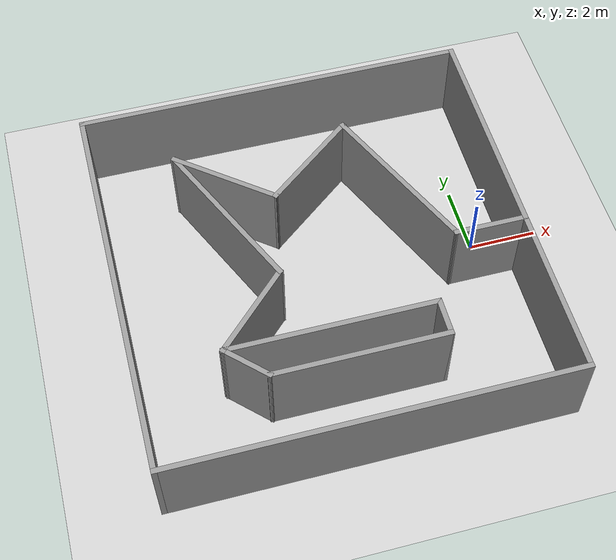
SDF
<sdf version="1.7">
 <world name="default">
  <light name="sun" type="directional">
   <pose>0 0 10 0 -0 0</pose>
   <diffuse>0.8 0.8 0.8 1</diffuse>
   <specular>0.2 0.2 0.2 1</specular>
   <attenuation>
    <range>1000</range>
    <constant>0.9</constant>
    <linear>0.01</linear>
    <quadratic>0.001</quadratic>
   </attenuation>
   <direction>-0.5 0.1 -0.9</direction>
   <spot><inner_angle>0</inner_angle><outer_angle>0</outer_angle><falloff>0</falloff></spot>
  </light>
  <model name="ground_plane">
   <static>1</static>
   <link name="link">
    <collision name="collision">
     <geometry><plane><normal>0 0 1</normal><size>100 100</size></plane></geometry>
     <surface><friction><ode><mu>100</mu><mu2>50</mu2></ode></friction></surface>
    </collision>
    <visual name="visual">
     <cast_shadows>0</cast_shadows>
     <geometry><plane><normal>0 0 1</normal><size>100 100</size></plane></geometry>
     <material>
      <script><uri>file://media/materials/scripts/gazebo.material</uri><name>Gazebo/Grey</name></script>
     </material>
    </visual>
   </link>
  </model>
  <gravity>0 0 -9.8</gravity>
  <magnetic_field>6e-06 2.3e-05 -4.2e-05</magnetic_field>
  <atmosphere type="adiabatic"/>
  <physics type="ode">
   <max_step_size>0.001</max_step_size>
   <real_time_factor>1</real_time_factor>
   <real_time_update_rate>1000</real_time_update_rate>
  </physics>
  <scene><ambient>0.4 0.4 0.4 1</ambient><background>0.7 0.7 0.7 1</background><shadows>1</shadows></scene>
  <spherical_coordinates>
   <surface_model>EARTH_WGS84</surface_model>
   <latitude_deg>0</latitude_deg>
   <longitude_deg>0</longitude_deg>
   <elevation>0</elevation>
   <heading_deg>0</heading_deg>
  </spherical_coordinates>
  <model name="pointy_corners">
   <pose>-4.675 -0.175 0 0 -0 0</pose>
   <link name="Wall_0">
    <collision name="Wall_0_Collision">
     <geometry><box><size>2.15 0.15 2.5</size></box></geometry>
     <pose>0 0 1.25 0 -0 0</pose>
    </collision>
    <visual name="Wall_0_Visual">
     <pose>0 0 1.25 0 -0 0</pose>
     <geometry><box><size>2.15 0.15 2.5</size></box></geometry>
     <material>
      <script><uri>file://media/materials/scripts/gazebo.material</uri><name>Gazebo/Grey</name></script>
      <ambient>1 1 1 1</ambient>
     </material>
     <meta><layer>0</layer></meta>
    </visual>
    <pose>4.675 -0.825 0 0 -0 3.14159</pose>
   </link>
   <link name="Wall_10">
    <collision name="Wall_10_Collision">
     <geometry><box><size>2.97843 0.15 2.5</size></box></geometry>
     <pose>0 0 1.25 0 -0 0</pose>
    </collision>
    <visual name="Wall_10_Visual">
     <pose>0 0 1.25 0 -0 0</pose>
     <geometry><box><size>2.97843 0.15 2.5</size></box></geometry>
     <material>
      <script><uri>file://media/materials/scripts/gazebo.material</uri><name>Gazebo/Grey</name></script>
      <ambient>1 1 1 1</ambient>
     </material>
     <meta><layer>0</layer></meta>
    </visual>
    <pose>-2.325 -1.825 0 0 -0 -2.35619</pose>
   </link>
   <link name="Wall_12">
    <collision name="Wall_12_Collision">
     <geometry><box><size>1.56421 0.15 2.5</size></box></geometry>
     <pose>0 0 1.25 0 -0 0</pose>
    </collision>
    <visual name="Wall_12_Visual">
     <pose>0 0 1.25 0 -0 0</pose>
     <geometry><box><size>1.56421 0.15 2.5</size></box></geometry>
     <material>
      <script><uri>file://media/materials/scripts/gazebo.material</uri><name>Gazebo/Grey</name></script>
      <ambient>1 1 1 1</ambient>
     </material>
     <meta><layer>0</layer></meta>
    </visual>
    <pose>-2.825 -3.325 0 0 -0 -0.785398</pose>
   </link>
   <link name="Wall_14">
    <collision name="Wall_14_Collision">
     <geometry><box><size>5 0.15 2.5</size></box></geometry>
     <pose>0 0 1.25 0 -0 0</pose>
    </collision>
    <visual name="Wall_14_Visual">
     <pose>0 0 1.25 0 -0 0</pose>
     <geometry><box><size>5 0.15 2.5</size></box></geometry>
     <material>
      <script><uri>file://media/materials/scripts/gazebo.material</uri><name>Gazebo/Grey</name></script>
      <ambient>1 1 1 1</ambient>
     </material>
     <meta><layer>0</layer></meta>
    </visual>
    <pose>0.100001 -3.825 0 0 -0 0</pose>
   </link>
   <link name="Wall_16">
    <collision name="Wall_16_Collision">
     <geometry><box><size>6 0.15 2.5</size></box></geometry>
     <pose>0 0 1.25 0 -0 0</pose>
    </collision>
    <visual name="Wall_16_Visual">
     <pose>0 0 1.25 0 -0 0</pose>
     <geometry><box><size>6 0.15 2.5</size></box></geometry>
     <material>
      <script><uri>file://media/materials/scripts/gazebo.material</uri><name>Gazebo/Grey</name></script>
      <ambient>1 1 1 1</ambient>
     </material>
     <meta><layer>0</layer></meta>
    </visual>
    <pose>-0.399999 -2.825 0 0 -0 0</pose>
   </link>
   <link name="Wall_17">
    <collision name="Wall_17_Collision">
     <geometry><box><size>1.15 0.15 2.5</size></box></geometry>
     <pose>0 0 1.25 0 -0 0</pose>
    </collision>
    <visual name="Wall_17_Visual">
     <pose>0 0 1.25 0 -0 0</pose>
     <geometry><box><size>1.15 0.15 2.5</size></box></geometry>
     <material>
      <script><uri>file://media/materials/scripts/gazebo.material</uri><name>Gazebo/Grey</name></script>
      <ambient>1 1 1 1</ambient>
     </material>
     <meta><layer>0</layer></meta>
    </visual>
    <pose>2.525 -3.325 0 0 -0 -1.5708</pose>
   </link>
   <link name="Wall_19">
    <collision name="Wall_19_Collision">
     <geometry><box><size>5 0.15 2.5</size></box></geometry>
     <pose>0 0 1.25 0 -0 0</pose>
    </collision>
    <visual name="Wall_19_Visual">
     <pose>0 0 1.25 0 -0 0</pose>
     <geometry><box><size>5 0.15 2.5</size></box></geometry>
     <material>
      <script><uri>file://media/materials/scripts/gazebo.material</uri><name>Gazebo/Grey</name></script>
      <ambient>1 1 1 1</ambient>
     </material>
     <meta><layer>0</layer></meta>
    </visual>
    <pose>5.675 -3.25 0 0 -0 -1.5708</pose>
   </link>
   <link name="Wall_2">
    <collision name="Wall_2_Collision">
     <geometry><box><size>5.07443 0.15 2.5</size></box></geometry>
     <pose>0 0 1.25 0 -0 0</pose>
    </collision>
    <visual name="Wall_2_Visual">
     <pose>0 0 1.25 0 -0 0</pose>
     <geometry><box><size>5.07443 0.15 2.5</size></box></geometry>
     <material>
      <script><uri>file://media/materials/scripts/gazebo.material</uri><name>Gazebo/Grey</name></script>
      <ambient>1 1 1 1</ambient>
     </material>
     <meta><layer>0</layer></meta>
    </visual>
    <pose>2.675 1.425 0 0 -0 1.98902</pose>
   </link>
   <link name="Wall_20">
    <collision name="Wall_20_Collision">
     <geometry><box><size>11.5 0.15 2.5</size></box></geometry>
     <pose>0 0 1.25 0 -0 0</pose>
    </collision>
    <visual name="Wall_20_Visual">
     <pose>0 0 1.25 0 -0 0</pose>
     <geometry><box><size>11.5 0.15 2.5</size></box></geometry>
     <material>
      <script><uri>file://media/materials/scripts/gazebo.material</uri><name>Gazebo/Grey</name></script>
      <ambient>1 1 1 1</ambient>
     </material>
     <meta><layer>0</layer></meta>
    </visual>
    <pose>0 -5.675 0 0 -0 3.14159</pose>
   </link>
   <link name="Wall_21">
    <collision name="Wall_21_Collision">
     <geometry><box><size>11.5 0.15 2.5</size></box></geometry>
     <pose>0 0 1.25 0 -0 0</pose>
    </collision>
    <visual name="Wall_21_Visual">
     <pose>0 0 1.25 0 -0 0</pose>
     <geometry><box><size>11.5 0.15 2.5</size></box></geometry>
     <material>
      <script><uri>file://media/materials/scripts/gazebo.material</uri><name>Gazebo/Grey</name></script>
      <ambient>1 1 1 1</ambient>
     </material>
     <meta><layer>0</layer></meta>
    </visual>
    <pose>-5.675 -0 0 0 -0 1.5708</pose>
   </link>
   <link name="Wall_22">
    <collision name="Wall_22_Collision">
     <geometry><box><size>11.5 0.15 2.5</size></box></geometry>
     <pose>0 0 1.25 0 -0 0</pose>
    </collision>
    <visual name="Wall_22_Visual">
     <pose>0 0 1.25 0 -0 0</pose>
     <geometry><box><size>11.5 0.15 2.5</size></box></geometry>
     <material>
      <script><uri>file://media/materials/scripts/gazebo.material</uri><name>Gazebo/Grey</name></script>
      <ambient>1 1 1 1</ambient>
     </material>
     <meta><layer>0</layer></meta>
    </visual>
    <pose>0 5.675 0 0 -0 0</pose>
   </link>
   <link name="Wall_24">
    <collision name="Wall_24_Collision">
     <geometry><box><size>6.65 0.15 2.5</size></box></geometry>
     <pose>0 0 1.25 0 -0 0</pose>
    </collision>
    <visual name="Wall_24_Visual">
     <pose>0 0 1.25 0 -0 0</pose>
     <geometry><box><size>6.65 0.15 2.5</size></box></geometry>
     <material>
      <script><uri>file://media/materials/scripts/gazebo.material</uri><name>Gazebo/Grey</name></script>
      <ambient>1 1 1 1</ambient>
     </material>
     <meta><layer>0</layer></meta>
    </visual>
    <pose>5.675 2.425 0 0 -0 -1.5708</pose>
   </link>
   <link name="Wall_4">
    <collision name="Wall_4_Collision">
     <geometry><box><size>3.35156 0.15 2.5</size></box></geometry>
     <pose>0 0 1.25 0 -0 0</pose>
    </collision>
    <visual name="Wall_4_Visual">
     <pose>0 0 1.25 0 -0 0</pose>
     <geometry><box><size>3.35156 0.15 2.5</size></box></geometry>
     <material>
      <script><uri>file://media/materials/scripts/gazebo.material</uri><name>Gazebo/Grey</name></script>
      <ambient>1 1 1 1</ambient>
     </material>
     <meta><layer>0</layer></meta>
    </visual>
    <pose>0.425 2.675 0 0 -0 -2.46685</pose>
   </link>
   <link name="Wall_6">
    <collision name="Wall_6_Collision">
     <geometry><box><size>3.36095 0.15 2.5</size></box></geometry>
     <pose>0 0 1.25 0 -0 0</pose>
    </collision>
    <visual name="Wall_6_Visual">
     <pose>0 0 1.25 0 -0 0</pose>
     <geometry><box><size>3.36095 0.15 2.5</size></box></geometry>
     <material>
      <script><uri>file://media/materials/scripts/gazebo.material</uri><name>Gazebo/Grey</name></script>
      <ambient>1 1 1 1</ambient>
     </material>
     <meta><layer>0</layer></meta>
    </visual>
    <pose>-2.075 2.6825 0 0 -0 2.4632</pose>
   </link>
   <link name="Wall_8">
    <collision name="Wall_8_Collision">
     <geometry><box><size>5.08814 0.15 2.5</size></box></geometry>
     <pose>0 0 1.25 0 -0 0</pose>
    </collision>
    <visual name="Wall_8_Visual">
     <pose>0 0 1.25 0 -0 0</pose>
     <geometry><box><size>5.08814 0.15 2.5</size></box></geometry>
     <material>
      <script><uri>file://media/materials/scripts/gazebo.material</uri><name>Gazebo/Grey</name></script>
      <ambient>1 1 1 1</ambient>
     </material>
     <meta><layer>0</layer></meta>
    </visual>
    <pose>-2.325 1.4325 0 0 -0 -1.15381</pose>
   </link>
   <static>1</static>
  </model>
 </world>
</sdf>
